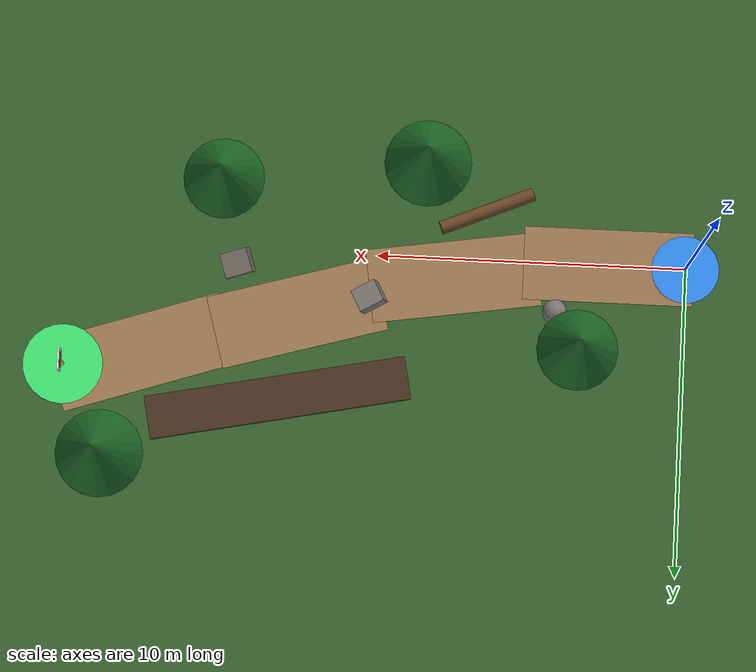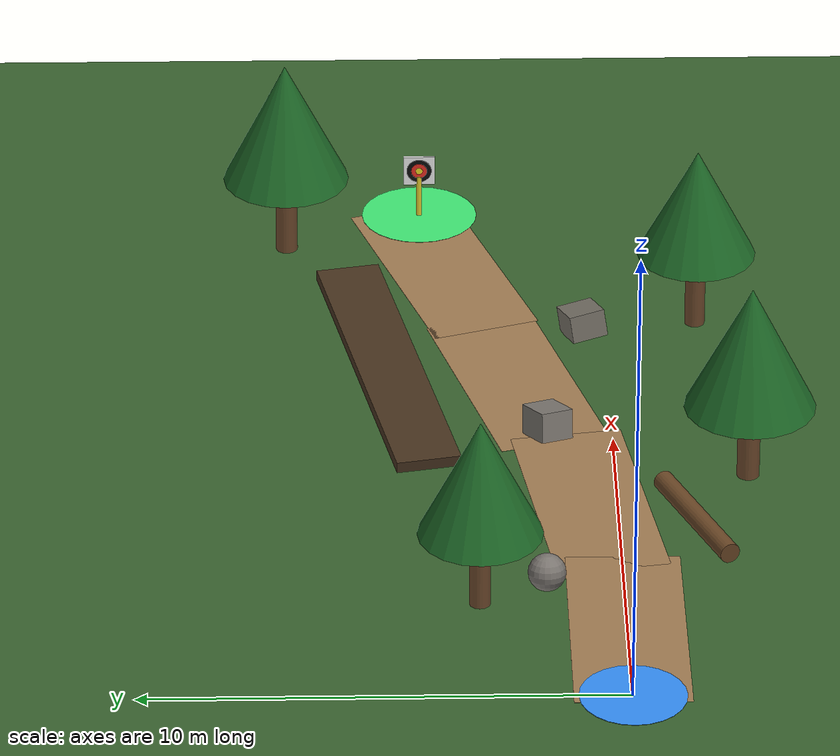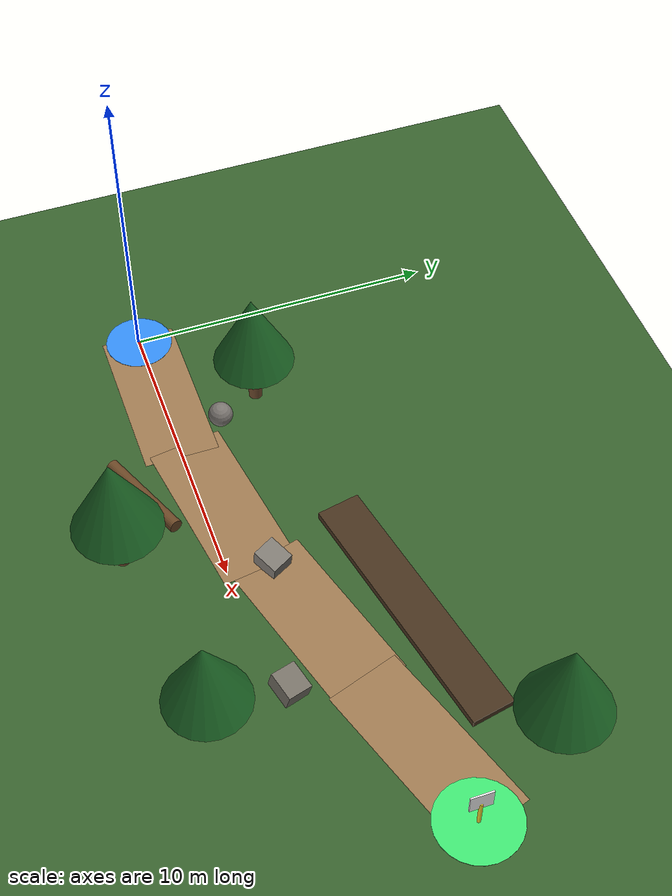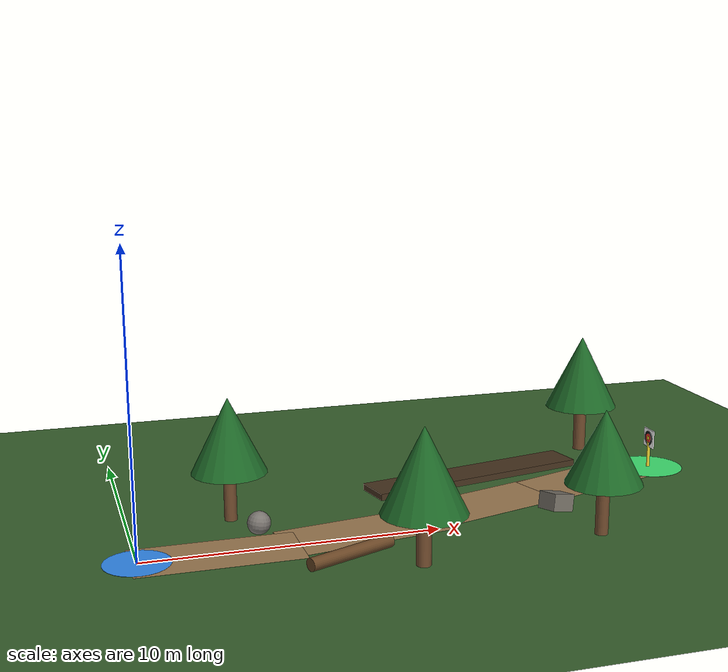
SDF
<?xml version="1.0" ?>
<sdf version="1.8">
  <world name="forest_world">
    <!-- Physics Configuration -->
    <physics name="1ms" type="ignored">
      <max_step_size>0.004</max_step_size>
      <real_time_factor>1.0</real_time_factor>
    </physics>

    <!-- Essential System Plugins -->
    <plugin filename="gz-sim-physics-system" name="gz::sim::systems::Physics" />
    <plugin filename="gz-sim-user-commands-system" name="gz::sim::systems::UserCommands" />
    <plugin filename="gz-sim-scene-broadcaster-system" name="gz::sim::systems::SceneBroadcaster" />
    <plugin filename="gz-sim-sensors-system" name="gz::sim::systems::Sensors" />
    <plugin filename="gz-sim-imu-system" name="gz::sim::systems::Imu" />
    <plugin filename="gz-sim-navsat-system" name="gz::sim::systems::NavSat" />

    <!-- Directional Sunlight with Forest Canopy Shadows -->
    <light type="directional" name="forest_sun">
      <cast_shadows>true</cast_shadows>
      <pose>0 0 35 0.55 0.35 0.2</pose>
      <diffuse>0.88 0.86 0.78 1.0</diffuse>
      <specular>0.3 0.3 0.3 1.0</specular>
      <attenuation>
        <range>1000</range>
        <constant>0.9</constant>
        <linear>0.01</linear>
        <quadratic>0.001</quadratic>
      </attenuation>
      <direction>-0.45 0.25 -1.0</direction>
    </light>

    <scene>
      <ambient>0.55 0.62 0.58 1.0</ambient>
      <background>0.48 0.68 0.85 1.0</background>
      <shadows>true</shadows>
      <grid>false</grid>
    </scene>

    <!-- Base Forest Floor (Mossy Earth & Undergrowth) -->
    <model name="forest_floor">
      <static>true</static>
      <link name="ground_link">
        <collision name="ground_col">
          <geometry>
            <plane>
              <normal>0 0 1</normal>
              <size>80 80</size>
            </plane>
          </geometry>
          <surface>
            <friction>
              <ode>
                <mu>1.2</mu>
                <mu2>1.2</mu2>
              </ode>
            </friction>
          </surface>
        </collision>
        <visual name="ground_vis">
          <geometry>
            <plane>
              <normal>0 0 1</normal>
              <size>80 80</size>
            </plane>
          </geometry>
          <material>
            <ambient>0.18 0.32 0.14 1.0</ambient>
            <diffuse>0.22 0.38 0.18 1.0</diffuse>
            <specular>0.04 0.04 0.04 1.0</specular>
          </material>
        </visual>
      </link>
    </model>

    <!-- Traversable Forest Dirt Trail (Point A -> Point B) -->
    <!-- Trail Segment 1 (0 to 5m) -->
    <model name="trail_segment_1">
      <static>true</static>
      <pose>2.5 0.0 0.002 0 0 0</pose>
      <link name="link">
        <visual name="vis">
          <geometry>
            <box>
              <size>5.5 2.4 0.004</size>
            </box>
          </geometry>
          <material>
            <ambient>0.52 0.40 0.26 1.0</ambient>
            <diffuse>0.62 0.48 0.32 1.0</diffuse>
          </material>
        </visual>
      </link>
    </model>

    <!-- Trail Segment 2 (5 to 10m, curving toward y=1.2) -->
    <model name="trail_segment_2">
      <static>true</static>
      <pose>7.5 0.6 0.002 0 0 0.15</pose>
      <link name="link">
        <visual name="vis">
          <geometry>
            <box>
              <size>5.5 2.4 0.004</size>
            </box>
          </geometry>
          <material>
            <ambient>0.52 0.40 0.26 1.0</ambient>
            <diffuse>0.62 0.48 0.32 1.0</diffuse>
          </material>
        </visual>
      </link>
    </model>

    <!-- Trail Segment 3 (10 to 15m, curving toward y=2.5) -->
    <model name="trail_segment_3">
      <static>true</static>
      <pose>12.5 2.0 0.002 0 0 0.28</pose>
      <link name="link">
        <visual name="vis">
          <geometry>
            <box>
              <size>5.5 2.4 0.004</size>
            </box>
          </geometry>
          <material>
            <ambient>0.52 0.40 0.26 1.0</ambient>
            <diffuse>0.62 0.48 0.32 1.0</diffuse>
          </material>
        </visual>
      </link>
    </model>

    <!-- Trail Segment 4 (15 to 20m, reaching Point B at y=4.0) -->
    <model name="trail_segment_4">
      <static>true</static>
      <pose>17.5 3.5 0.002 0 0 0.32</pose>
      <link name="link">
        <visual name="vis">
          <geometry>
            <box>
              <size>5.8 2.4 0.004</size>
            </box>
          </geometry>
          <material>
            <ambient>0.52 0.40 0.26 1.0</ambient>
            <diffuse>0.62 0.48 0.32 1.0</diffuse>
          </material>
        </visual>
      </link>
    </model>

    <!-- Start Platform: Point A (x=0.0, y=0.0) -->
    <model name="point_a_start_marker">
      <static>true</static>
      <pose>0.0 0.0 0.006 0 0 0</pose>
      <link name="link">
        <visual name="pad">
          <geometry>
            <cylinder>
              <radius>1.1</radius>
              <length>0.010</length>
            </cylinder>
          </geometry>
          <material>
            <ambient>0.15 0.45 0.85 1.0</ambient>
            <diffuse>0.20 0.55 0.95 1.0</diffuse>
          </material>
        </visual>
      </link>
    </model>

    <!-- Goal Platform & Visual Target Beacon: Point B (x=20.0, y=4.0) -->
    <model name="point_b_goal_marker">
      <static>true</static>
      <pose>20.0 4.0 0.006 0 0 0</pose>
      <link name="link">
        <visual name="pad">
          <geometry>
            <cylinder>
              <radius>1.3</radius>
              <length>0.010</length>
            </cylinder>
          </geometry>
          <material>
            <ambient>0.15 0.80 0.35 1.0</ambient>
            <diffuse>0.25 0.90 0.45 1.0</diffuse>
          </material>
        </visual>
      </link>
    </model>

    <!-- Visual Target Beacon at Point B -->
    <model name="forest_goal_beacon">
      <static>true</static>
      <pose>20.0 4.0 0.8 0 0 3.14159</pose>
      <link name="link">
        <!-- Mast -->
        <visual name="mast">
          <pose>0 0 -0.3 0 0 0</pose>
          <geometry>
            <cylinder>
              <radius>0.06</radius>
              <length>1.0</length>
            </cylinder>
          </geometry>
          <material>
            <ambient>0.85 0.75 0.15 1.0</ambient>
            <diffuse>0.95 0.85 0.20 1.0</diffuse>
          </material>
        </visual>
        <!-- High Contrast Target Board -->
        <visual name="board">
          <pose>0 0 0.35 0 0 0</pose>
          <geometry>
            <box>
              <size>0.05 0.7 0.7</size>
            </box>
          </geometry>
          <material>
            <ambient>0.95 0.95 0.95 1.0</ambient>
            <diffuse>1.0 1.0 1.0 1.0</diffuse>
          </material>
        </visual>
        <!-- Outer Target Ring (Black) -->
        <visual name="ring_outer">
          <pose>0.03 0 0.35 0 1.570796 0</pose>
          <geometry>
            <cylinder>
              <radius>0.28</radius>
              <length>0.01</length>
            </cylinder>
          </geometry>
          <material>
            <ambient>0.1 0.1 0.1 1.0</ambient>
            <diffuse>0.05 0.05 0.05 1.0</diffuse>
          </material>
        </visual>
        <!-- Middle Ring (Bright Red) -->
        <visual name="ring_mid">
          <pose>0.035 0 0.35 0 1.570796 0</pose>
          <geometry>
            <cylinder>
              <radius>0.18</radius>
              <length>0.01</length>
            </cylinder>
          </geometry>
          <material>
            <ambient>0.90 0.15 0.10 1.0</ambient>
            <diffuse>0.98 0.20 0.15 1.0</diffuse>
          </material>
        </visual>
        <!-- Bullseye Center (Yellow) -->
        <visual name="ring_center">
          <pose>0.04 0 0.35 0 1.570796 0</pose>
          <geometry>
            <cylinder>
              <radius>0.08</radius>
              <length>0.01</length>
            </cylinder>
          </geometry>
          <material>
            <ambient>0.95 0.85 0.10 1.0</ambient>
            <diffuse>1.0 0.90 0.15 1.0</diffuse>
          </material>
        </visual>
        <collision name="col">
          <geometry>
            <cylinder>
              <radius>0.25</radius>
              <length>1.6</length>
            </cylinder>
          </geometry>
        </collision>
      </link>
    </model>

    <!-- ==================== Realistic Forest Elements: Trees, Logs, Rocks, Ditches ==================== -->

    <!-- Fallen Log on Right Shoulder near x=6.5 -->
    <model name="fallen_log_1">
      <static>true</static>
      <pose>6.5 -1.6 0.20 0 1.570796 0.4</pose>
      <link name="link">
        <visual name="vis">
          <geometry>
            <cylinder>
              <radius>0.22</radius>
              <length>3.2</length>
            </cylinder>
          </geometry>
          <material>
            <ambient>0.32 0.20 0.10 1.0</ambient>
            <diffuse>0.42 0.28 0.15 1.0</diffuse>
          </material>
        </visual>
        <collision name="col">
          <geometry>
            <cylinder>
              <radius>0.22</radius>
              <length>3.2</length>
            </cylinder>
          </geometry>
        </collision>
      </link>
    </model>

    <!-- Unexpected Boulder on Path at x=10.5 requiring Dynamic Avoidance -->
    <model name="path_obstacle_boulder">
      <static>true</static>
      <pose>10.2 1.4 0.35 0.1 0.2 0.5</pose>
      <link name="link">
        <visual name="vis">
          <geometry>
            <box>
              <size>0.85 0.75 0.65</size>
            </box>
          </geometry>
          <material>
            <ambient>0.40 0.38 0.36 1.0</ambient>
            <diffuse>0.50 0.48 0.45 1.0</diffuse>
          </material>
        </visual>
        <collision name="col">
          <geometry>
            <box>
              <size>0.85 0.75 0.65</size>
            </box>
          </geometry>
        </collision>
      </link>
    </model>

    <!-- Rock Cluster 1 -->
    <model name="rock_cluster_1">
      <static>true</static>
      <pose>4.2 1.6 0.30 0.1 0.1 0.8</pose>
      <link name="link">
        <visual name="vis">
          <geometry>
            <sphere>
              <radius>0.40</radius>
            </sphere>
          </geometry>
          <material>
            <ambient>0.38 0.36 0.35 1.0</ambient>
            <diffuse>0.48 0.46 0.44 1.0</diffuse>
          </material>
        </visual>
        <collision name="col">
          <geometry>
            <sphere>
              <radius>0.40</radius>
            </sphere>
          </geometry>
        </collision>
      </link>
    </model>

    <!-- Rock Cluster 2 -->
    <model name="rock_cluster_2">
      <static>true</static>
      <pose>14.5 0.5 0.35 -0.1 0.2 0.3</pose>
      <link name="link">
        <visual name="vis">
          <geometry>
            <box>
              <size>0.9 0.8 0.6</size>
            </box>
          </geometry>
          <material>
            <ambient>0.36 0.34 0.32 1.0</ambient>
            <diffuse>0.46 0.44 0.40 1.0</diffuse>
          </material>
        </visual>
        <collision name="col">
          <geometry>
            <box>
              <size>0.9 0.8 0.6</size>
            </box>
          </geometry>
        </collision>
      </link>
    </model>

    <!-- Dangerous Ditch / Terrain Depression on Left Edge -->
    <model name="forest_ditch_hazard">
      <static>true</static>
      <pose>13.0 4.8 0.12 0 0 0.2</pose>
      <link name="link">
        <visual name="vis">
          <geometry>
            <box>
              <size>8.5 1.4 0.24</size>
            </box>
          </geometry>
          <material>
            <ambient>0.20 0.14 0.08 1.0</ambient>
            <diffuse>0.28 0.20 0.12 1.0</diffuse>
          </material>
        </visual>
        <collision name="col">
          <geometry>
            <box>
              <size>8.5 1.4 0.24</size>
            </box>
          </geometry>
        </collision>
      </link>
    </model>

    <!-- Pine Forest Trees Flanking the Trail -->
    <!-- Tree 1 -->
    <model name="tree_1">
      <static>true</static>
      <pose>3.5 3.0 0 0 0 0</pose>
      <link name="link">
        <visual name="trunk">
          <pose>0 0 1.1 0 0 0</pose>
          <geometry>
            <cylinder>
              <radius>0.22</radius>
              <length>2.2</length>
            </cylinder>
          </geometry>
          <material>
            <ambient>0.35 0.22 0.12 1.0</ambient>
            <diffuse>0.45 0.30 0.18 1.0</diffuse>
          </material>
        </visual>
        <visual name="canopy">
          <pose>0 0 3.0 0 0 0</pose>
          <geometry>
            <cone>
              <radius>1.3</radius>
              <length>2.6</length>
            </cone>
          </geometry>
          <material>
            <ambient>0.08 0.32 0.10 1.0</ambient>
            <diffuse>0.12 0.42 0.16 1.0</diffuse>
          </material>
        </visual>
        <collision name="col">
          <pose>0 0 1.1 0 0 0</pose>
          <geometry>
            <cylinder>
              <radius>0.25</radius>
              <length>2.2</length>
            </cylinder>
          </geometry>
        </collision>
      </link>
    </model>

    <!-- Tree 2 -->
    <model name="tree_2">
      <static>true</static>
      <pose>8.5 -2.8 0 0 0 0</pose>
      <link name="link">
        <visual name="trunk">
          <pose>0 0 1.1 0 0 0</pose>
          <geometry>
            <cylinder>
              <radius>0.24</radius>
              <length>2.2</length>
            </cylinder>
          </geometry>
          <material>
            <ambient>0.35 0.22 0.12 1.0</ambient>
            <diffuse>0.45 0.30 0.18 1.0</diffuse>
          </material>
        </visual>
        <visual name="canopy">
          <pose>0 0 3.1 0 0 0</pose>
          <geometry>
            <cone>
              <radius>1.4</radius>
              <length>2.8</length>
            </cone>
          </geometry>
          <material>
            <ambient>0.08 0.32 0.10 1.0</ambient>
            <diffuse>0.12 0.42 0.16 1.0</diffuse>
          </material>
        </visual>
        <collision name="col">
          <pose>0 0 1.1 0 0 0</pose>
          <geometry>
            <cylinder>
              <radius>0.28</radius>
              <length>2.2</length>
            </cylinder>
          </geometry>
        </collision>
      </link>
    </model>

    <!-- Tree 3 -->
    <model name="tree_3">
      <static>true</static>
      <pose>15.0 -2.0 0 0 0 0</pose>
      <link name="link">
        <visual name="trunk">
          <pose>0 0 1.1 0 0 0</pose>
          <geometry>
            <cylinder>
              <radius>0.22</radius>
              <length>2.2</length>
            </cylinder>
          </geometry>
          <material>
            <ambient>0.35 0.22 0.12 1.0</ambient>
            <diffuse>0.45 0.30 0.18 1.0</diffuse>
          </material>
        </visual>
        <visual name="canopy">
          <pose>0 0 3.0 0 0 0</pose>
          <geometry>
            <cone>
              <radius>1.3</radius>
              <length>2.5</length>
            </cone>
          </geometry>
          <material>
            <ambient>0.08 0.32 0.10 1.0</ambient>
            <diffuse>0.12 0.42 0.16 1.0</diffuse>
          </material>
        </visual>
        <collision name="col">
          <pose>0 0 1.1 0 0 0</pose>
          <geometry>
            <cylinder>
              <radius>0.25</radius>
              <length>2.2</length>
            </cylinder>
          </geometry>
        </collision>
      </link>
    </model>

    <!-- Tree 4 -->
    <model name="tree_4">
      <static>true</static>
      <pose>18.5 7.0 0 0 0 0</pose>
      <link name="link">
        <visual name="trunk">
          <pose>0 0 1.1 0 0 0</pose>
          <geometry>
            <cylinder>
              <radius>0.24</radius>
              <length>2.2</length>
            </cylinder>
          </geometry>
          <material>
            <ambient>0.35 0.22 0.12 1.0</ambient>
            <diffuse>0.45 0.30 0.18 1.0</diffuse>
          </material>
        </visual>
        <visual name="canopy">
          <pose>0 0 3.2 0 0 0</pose>
          <geometry>
            <cone>
              <radius>1.4</radius>
              <length>2.8</length>
            </cone>
          </geometry>
          <material>
            <ambient>0.08 0.32 0.10 1.0</ambient>
            <diffuse>0.12 0.42 0.16 1.0</diffuse>
          </material>
        </visual>
        <collision name="col">
          <pose>0 0 1.1 0 0 0</pose>
          <geometry>
            <cylinder>
              <radius>0.28</radius>
              <length>2.2</length>
            </cylinder>
          </geometry>
        </collision>
      </link>
    </model>

  </world>
</sdf>
